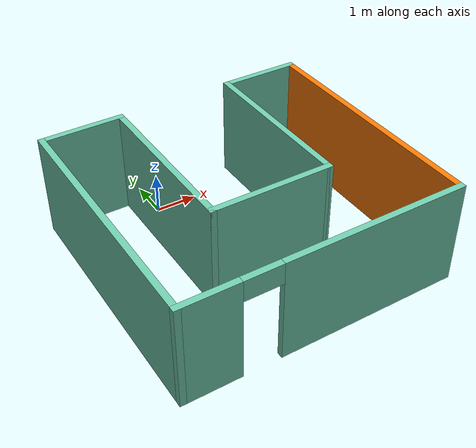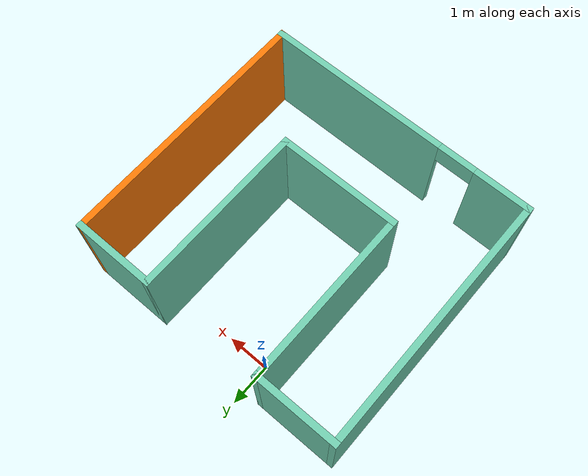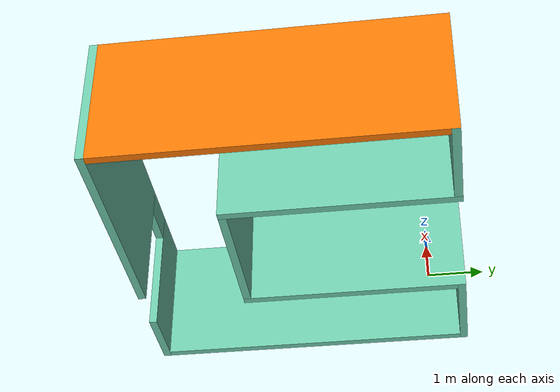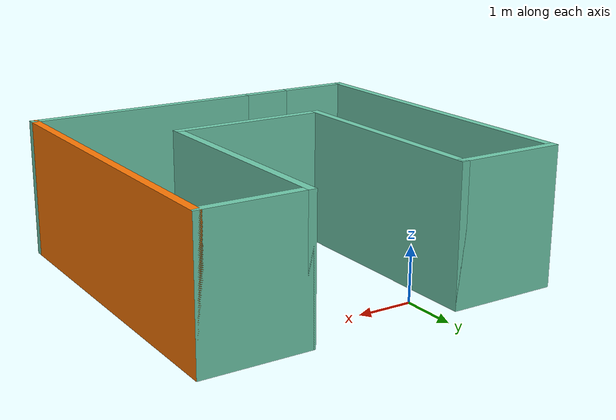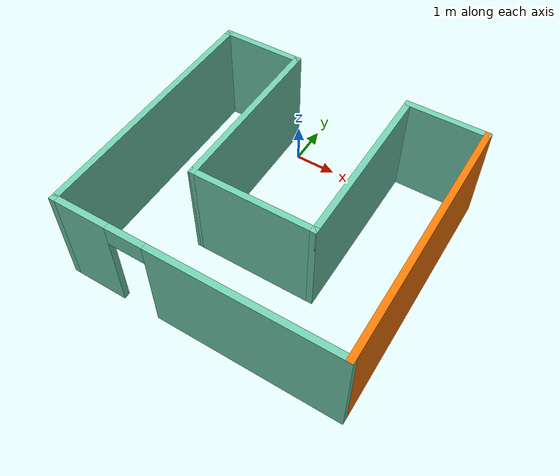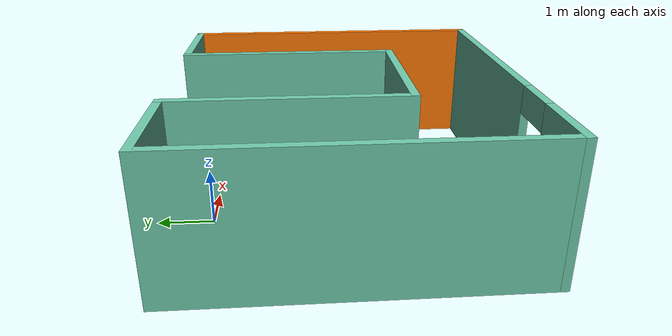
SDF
<?xml version='1.0'?>
<sdf version='1.6'>
  <model name='house'>
    <pose frame=''>0.93092 -2.42864 0 0 -0 0</pose>
    <link name='Wall_0'>
      <collision name='Wall_0_Collision'>
        <geometry>
          <box>
            <size>2.05 0.15 2.5</size>
          </box>
        </geometry>
        <pose frame=''>0 0 1.25 0 -0 0</pose>
      </collision>
      <visual name='Wall_0_Visual'>
        <pose frame=''>0 0 1.25 0 -0 0</pose>
        <geometry>
          <box>
            <size>2.05 0.15 2.5</size>
          </box>
        </geometry>
        <material>
          <script>
            <uri>file://media/materials/scripts/gazebo.material</uri>
            <name>Gazebo/Grey</name>
          </script>
          <ambient>0.435294 0.796078 0.67451 1</ambient>
        </material>
        <meta>
          <layer>0</layer>
        </meta>
      </visual>
      <pose frame=''>-2.35 3.05 0 0 -0 0</pose>
    </link>
    <link name='Wall_1'>
      <collision name='Wall_1_Collision'>
        <geometry>
          <box>
            <size>4.25 0.15 2.5</size>
          </box>
        </geometry>
        <pose frame=''>0 0 1.25 0 -0 0</pose>
      </collision>
      <visual name='Wall_1_Visual'>
        <pose frame=''>0 0 1.25 0 -0 0</pose>
        <geometry>
          <box>
            <size>4.25 0.15 2.5</size>
          </box>
        </geometry>
        <material>
          <script>
            <uri>file://media/materials/scripts/gazebo.material</uri>
            <name>Gazebo/Grey</name>
          </script>
          <ambient>0.435294 0.796078 0.67451 1</ambient>
        </material>
        <meta>
          <layer>0</layer>
        </meta>
      </visual>
      <pose frame=''>-1.4 1 0 0 0 -1.5708</pose>
    </link>
    <link name='Wall_2'>
      <collision name='Wall_2_Collision'>
        <geometry>
          <box>
            <size>3 0.15 2.5</size>
          </box>
        </geometry>
        <pose frame=''>0 0 1.25 0 -0 0</pose>
      </collision>
      <visual name='Wall_2_Visual'>
        <pose frame=''>0 0 1.25 0 -0 0</pose>
        <geometry>
          <box>
            <size>3 0.15 2.5</size>
          </box>
        </geometry>
        <material>
          <script>
            <uri>file://media/materials/scripts/gazebo.material</uri>
            <name>Gazebo/Grey</name>
          </script>
          <ambient>0.435294 0.796078 0.67451 1</ambient>
        </material>
        <meta>
          <layer>0</layer>
        </meta>
      </visual>
      <pose frame=''>0.025 -1.05 0 0 -0 0</pose>
    </link>
    <link name='Wall_3'>
      <collision name='Wall_3_Collision'>
        <geometry>
          <box>
            <size>4.25 0.15 2.5</size>
          </box>
        </geometry>
        <pose frame=''>0 0 1.25 0 -0 0</pose>
      </collision>
      <visual name='Wall_3_Visual'>
        <pose frame=''>0 0 1.25 0 -0 0</pose>
        <geometry>
          <box>
            <size>4.25 0.15 2.5</size>
          </box>
        </geometry>
        <material>
          <script>
            <uri>file://media/materials/scripts/gazebo.material</uri>
            <name>Gazebo/Grey</name>
          </script>
          <ambient>0.435294 0.796078 0.67451 1</ambient>
        </material>
        <meta>
          <layer>0</layer>
        </meta>
      </visual>
      <pose frame=''>1.45 1 0 0 -0 1.5708</pose>
    </link>
    <link name='Wall_4'>
      <collision name='Wall_4_Collision'>
        <geometry>
          <box>
            <size>2 0.15 2.5</size>
          </box>
        </geometry>
        <pose frame=''>0 0 1.25 0 -0 0</pose>
      </collision>
      <visual name='Wall_4_Visual'>
        <pose frame=''>0 0 1.25 0 -0 0</pose>
        <geometry>
          <box>
            <size>2 0.15 2.5</size>
          </box>
        </geometry>
        <material>
          <script>
            <uri>file://media/materials/scripts/gazebo.material</uri>
            <name>Gazebo/Grey</name>
          </script>
          <ambient>0.435294 0.796078 0.67451 1</ambient>
        </material>
        <meta>
          <layer>0</layer>
        </meta>
      </visual>
      <pose frame=''>2.375 3.05 0 0 -0 0</pose>
    </link>
    <link name='Wall_5'>
      <collision name='Wall_5_Collision'>
        <geometry>
          <box>
            <size>6.25 0.15 2.5</size>
          </box>
        </geometry>
        <pose frame=''>0 0 1.25 0 -0 0</pose>
      </collision>
      <visual name='Wall_5_Visual'>
        <pose frame=''>0 0 1.25 0 -0 0</pose>
        <geometry>
          <box>
            <size>6.25 0.15 2.5</size>
          </box>
        </geometry>
        <material>
          <script>
            <uri>file://media/materials/scripts/gazebo.material</uri>
            <name>Gazebo/Grey</name>
          </script>
          <ambient>0.996078 0.47451 0.0196078 1</ambient>
        </material>
        <meta>
          <layer>0</layer>
        </meta>
      </visual>
      <pose frame=''>3.3 0 0 0 0 -1.5708</pose>
    </link>
    <link name='Wall_6'>
      <pose frame=''>0 -3.05 0 0 -0 3.14159</pose>
      <visual name='Wall_6_Visual_0'>
        <pose frame=''>-1.15238 0 1.25 0 -0 0</pose>
        <geometry>
          <box>
            <size>4.44523 0.15 2.5</size>
          </box>
        </geometry>
        <material>
          <script>
            <uri>file://media/materials/scripts/gazebo.material</uri>
            <name>Gazebo/Grey</name>
          </script>
          <ambient>0.435294 0.796078 0.67451 1</ambient>
        </material>
        <meta>
          <layer>0</layer>
        </meta>
      </visual>
      <collision name='Wall_6_Collision_0'>
        <geometry>
          <box>
            <size>4.44523 0.15 2.5</size>
          </box>
        </geometry>
        <pose frame=''>-1.15238 0 1.25 0 -0 0</pose>
      </collision>
      <visual name='Wall_6_Visual_1'>
        <pose frame=''>2.67262 0 1.25 0 -0 0</pose>
        <geometry>
          <box>
            <size>1.40477 0.15 2.5</size>
          </box>
        </geometry>
        <material>
          <script>
            <uri>file://media/materials/scripts/gazebo.material</uri>
            <name>Gazebo/Grey</name>
          </script>
          <ambient>0.435294 0.796078 0.67451 1</ambient>
        </material>
        <meta>
          <layer>0</layer>
        </meta>
      </visual>
      <collision name='Wall_6_Collision_1'>
        <geometry>
          <box>
            <size>1.40477 0.15 2.5</size>
          </box>
        </geometry>
        <pose frame=''>2.67262 0 1.25 0 -0 0</pose>
      </collision>
      <visual name='Wall_6_Visual_2'>
        <pose frame=''>1.52023 0 2.25 0 -0 0</pose>
        <geometry>
          <box>
            <size>0.9 0.15 0.5</size>
          </box>
        </geometry>
        <material>
          <script>
            <uri>file://media/materials/scripts/gazebo.material</uri>
            <name>Gazebo/Grey</name>
          </script>
          <ambient>0.435294 0.796078 0.67451 1</ambient>
        </material>
        <meta>
          <layer>0</layer>
        </meta>
      </visual>
      <collision name='Wall_6_Collision_2'>
        <geometry>
          <box>
            <size>0.9 0.15 0.5</size>
          </box>
        </geometry>
        <pose frame=''>1.52023 0 2.25 0 -0 0</pose>
      </collision>
    </link>
    <link name='Wall_7'>
      <collision name='Wall_7_Collision'>
        <geometry>
          <box>
            <size>6.25 0.15 2.5</size>
          </box>
        </geometry>
        <pose frame=''>0 0 1.25 0 -0 0</pose>
      </collision>
      <visual name='Wall_7_Visual'>
        <pose frame=''>0 0 1.25 0 -0 0</pose>
        <geometry>
          <box>
            <size>6.25 0.15 2.5</size>
          </box>
        </geometry>
        <material>
          <script>
            <uri>file://media/materials/scripts/gazebo.material</uri>
            <name>Gazebo/Grey</name>
          </script>
          <ambient>0.435294 0.796078 0.67451 1</ambient>
        </material>
        <meta>
          <layer>0</layer>
        </meta>
      </visual>
      <pose frame=''>-3.3 0 0 0 -0 1.5708</pose>
    </link>
    <static>1</static>
  </model>
</sdf>
